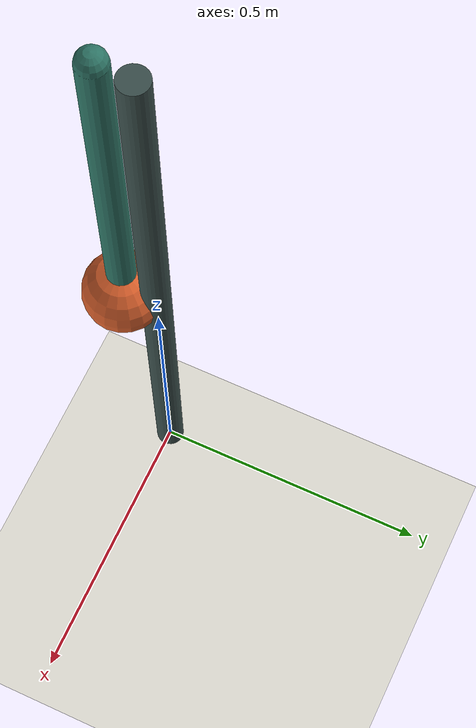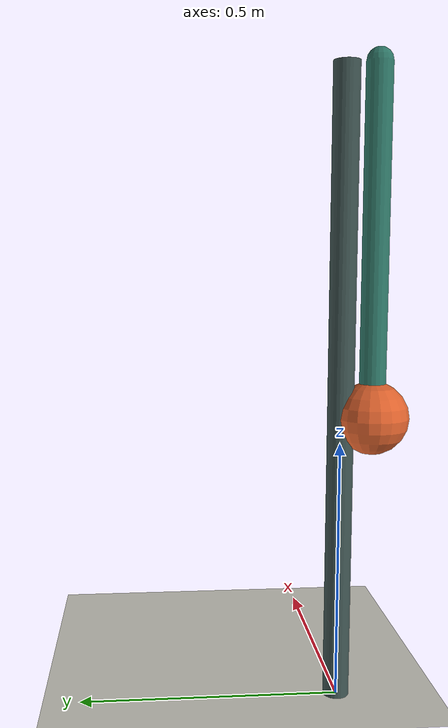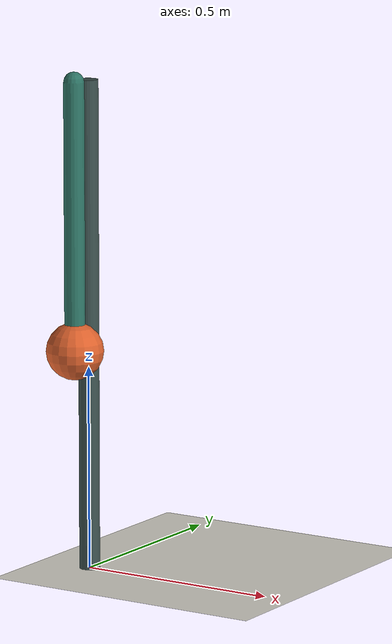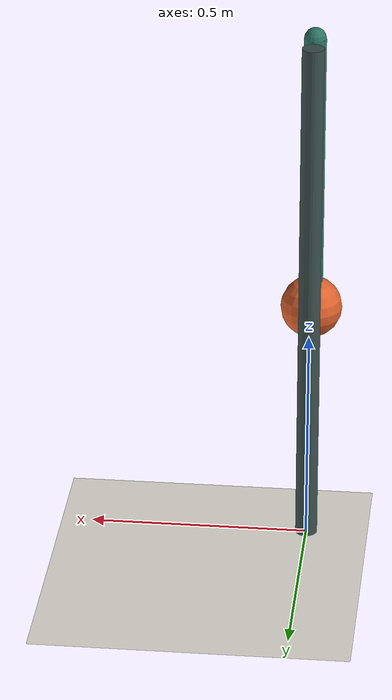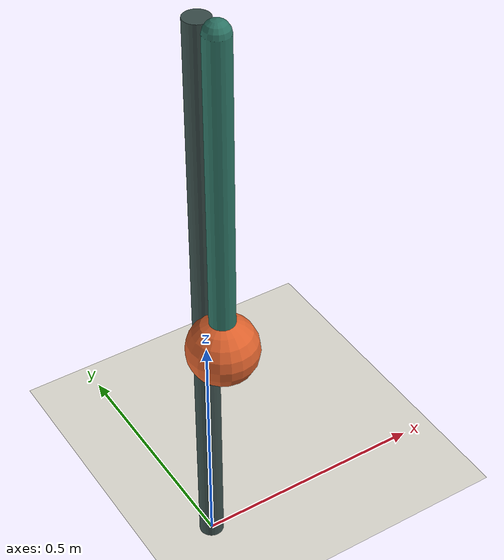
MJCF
<mujoco model="preparation_pendulum">
  <compiler angle="radian"/>
  <option timestep="0.005" integrator="implicitfast" gravity="0 0 -9.81"/>
  <visual><global offwidth="480" offheight="320"/></visual>
  <worldbody>
    <light pos="1 -2 3" dir="-0.3 0.4 -1"/>
    <camera name="overview" pos="0 -2.6 1.1" xyaxes="1 0 0 0 0.2 1"/>
    <geom type="plane" size="2 2 0.05" rgba="0.90 0.89 0.85 1"/>
    <geom type="cylinder" pos="0 0 0.6" size="0.025 0.6" rgba="0.23 0.31 0.30 1"/>
    <body name="pendulum" pos="0 -0.06 1.2">
      <joint name="hinge" type="hinge" axis="0 1 0" damping="0.1"/>
      <geom name="rod" type="capsule" fromto="0 0 0 0 0 -0.65" size="0.025" mass="0.1" rgba="0.18 0.46 0.40 1"/>
      <geom name="bob" type="sphere" pos="0 0 -0.65" size="0.07" mass="0.2" rgba="0.88 0.39 0.18 1"/>
    </body>
  </worldbody>
  <actuator><motor name="drive" joint="hinge" ctrllimited="true" ctrlrange="-0.5 0.5"/></actuator>
</mujoco>
